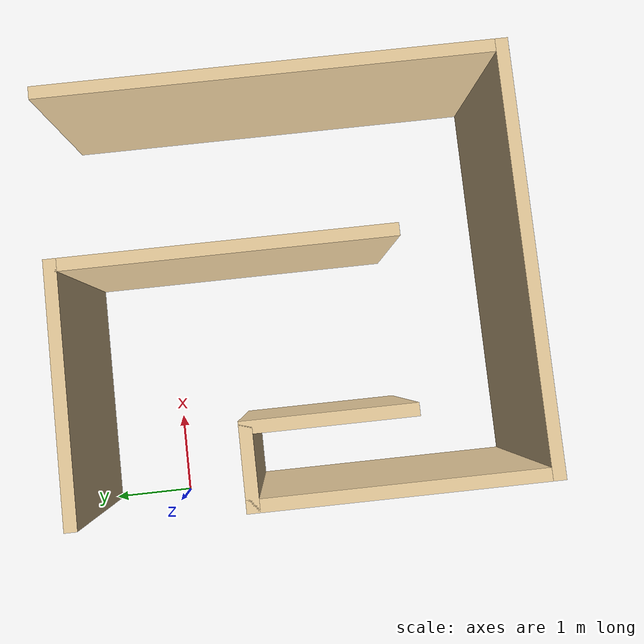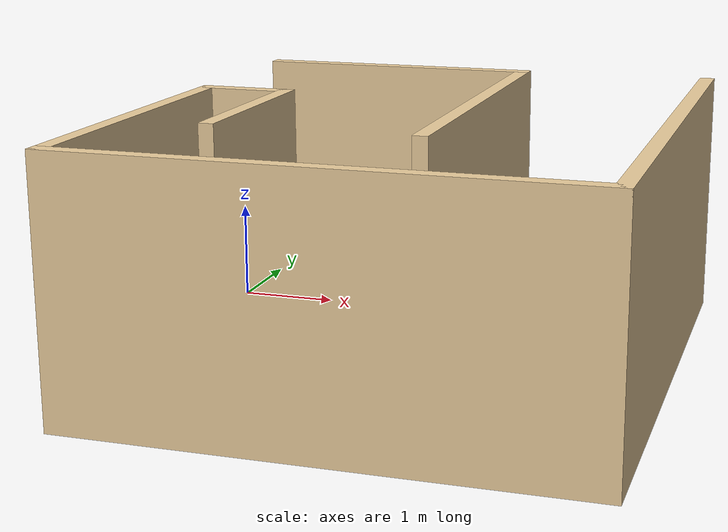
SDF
<?xml version='1.0'?>
<sdf version='1.7'>
  <model name='test_01'>
    <pose>2.475 -1.65039 0 0 -0 0</pose>
    <link name='Wall_0'>
      <collision name='Wall_0_Collision'>
        <geometry>
          <box>
            <size>1 0.15 2.5</size>
          </box>
        </geometry>
        <pose>0 0 1.25 0 -0 0</pose>
      </collision>
      <visual name='Wall_0_Visual'>
        <pose>0 0 1.25 0 -0 0</pose>
        <geometry>
          <box>
            <size>1 0.15 2.5</size>
          </box>
        </geometry>
        <material>
          <script>
            <uri>file://media/materials/scripts/gazebo.material</uri>
            <name>Gazebo/Grey</name>
          </script>
          <ambient>0.921569 0.807843 0.615686 1</ambient>
        </material>
        <meta>
          <layer>0</layer>
        </meta>
      </visual>
      <pose>-2 0.675 0 0 -0 0</pose>
    </link>
    <link name='Wall_10'>
      <collision name='Wall_10_Collision'>
        <geometry>
          <box>
            <size>3.5 0.15 2.5</size>
          </box>
        </geometry>
        <pose>0 0 1.25 0 -0 0</pose>
      </collision>
      <visual name='Wall_10_Visual'>
        <pose>0 0 1.25 0 -0 0</pose>
        <geometry>
          <box>
            <size>3.5 0.15 2.5</size>
          </box>
        </geometry>
        <material>
          <script>
            <uri>file://media/materials/scripts/gazebo.material</uri>
            <name>Gazebo/Grey</name>
          </script>
          <ambient>0.921569 0.807843 0.615686 1</ambient>
        </material>
        <meta>
          <layer>0</layer>
        </meta>
      </visual>
      <pose>-2.425 -1 0 0 -0 -1.5708</pose>
    </link>
    <link name='Wall_12'>
      <collision name='Wall_12_Collision'>
        <geometry>
          <box>
            <size>5 0.15 2.5</size>
          </box>
        </geometry>
        <pose>0 0 1.25 0 -0 0</pose>
      </collision>
      <visual name='Wall_12_Visual'>
        <pose>0 0 1.25 0 -0 0</pose>
        <geometry>
          <box>
            <size>5 0.15 2.5</size>
          </box>
        </geometry>
        <material>
          <script>
            <uri>file://media/materials/scripts/gazebo.material</uri>
            <name>Gazebo/Grey</name>
          </script>
          <ambient>0.921569 0.807843 0.615686 1</ambient>
        </material>
        <meta>
          <layer>0</layer>
        </meta>
      </visual>
      <pose>-0 -2.675 0 0 -0 0</pose>
    </link>
    <link name='Wall_14'>
      <collision name='Wall_14_Collision'>
        <geometry>
          <box>
            <size>5.5 0.15 2.5</size>
          </box>
        </geometry>
        <pose>0 0 1.25 0 -0 0</pose>
      </collision>
      <visual name='Wall_14_Visual'>
        <pose>0 0 1.25 0 -0 0</pose>
        <geometry>
          <box>
            <size>5.5 0.15 2.5</size>
          </box>
        </geometry>
        <material>
          <script>
            <uri>file://media/materials/scripts/gazebo.material</uri>
            <name>Gazebo/Grey</name>
          </script>
          <ambient>0.921569 0.807843 0.615686 1</ambient>
        </material>
        <meta>
          <layer>0</layer>
        </meta>
      </visual>
      <pose>2.425 0 0 0 -0 1.5708</pose>
    </link>
    <link name='Wall_4'>
      <collision name='Wall_4_Collision'>
        <geometry>
          <box>
            <size>3 0.15 2.5</size>
          </box>
        </geometry>
        <pose>0 0 1.25 0 -0 0</pose>
      </collision>
      <visual name='Wall_4_Visual'>
        <pose>0 0 1.25 0 -0 0</pose>
        <geometry>
          <box>
            <size>3 0.15 2.5</size>
          </box>
        </geometry>
        <material>
          <script>
            <uri>file://media/materials/scripts/gazebo.material</uri>
            <name>Gazebo/Grey</name>
          </script>
          <ambient>0.921569 0.807843 0.615686 1</ambient>
        </material>
        <meta>
          <layer>0</layer>
        </meta>
      </visual>
      <pose>-0.993235 2.66264 0 0 -0 0</pose>
    </link>
    <link name='Wall_6'>
      <collision name='Wall_6_Collision'>
        <geometry>
          <box>
            <size>4 0.15 2.5</size>
          </box>
        </geometry>
        <pose>0 0 1.25 0 -0 0</pose>
      </collision>
      <visual name='Wall_6_Visual'>
        <pose>0 0 1.25 0 -0 0</pose>
        <geometry>
          <box>
            <size>4 0.15 2.5</size>
          </box>
        </geometry>
        <material>
          <script>
            <uri>file://media/materials/scripts/gazebo.material</uri>
            <name>Gazebo/Grey</name>
          </script>
          <ambient>0.921569 0.807843 0.615686 1</ambient>
        </material>
        <meta>
          <layer>0</layer>
        </meta>
      </visual>
      <pose>0.431765 0.737645 0 0 -0 -1.5708</pose>
    </link>
    <link name='Wall_8'>
      <collision name='Wall_8_Collision'>
        <geometry>
          <box>
            <size>2 0.15 2.5</size>
          </box>
        </geometry>
        <pose>0 0 1.25 0 -0 0</pose>
      </collision>
      <visual name='Wall_8_Visual'>
        <pose>0 0 1.25 0 -0 0</pose>
        <geometry>
          <box>
            <size>2 0.15 2.5</size>
          </box>
        </geometry>
        <material>
          <script>
            <uri>file://media/materials/scripts/gazebo.material</uri>
            <name>Gazebo/Grey</name>
          </script>
          <ambient>0.921569 0.807843 0.615686 1</ambient>
        </material>
        <meta>
          <layer>0</layer>
        </meta>
      </visual>
      <pose>-1.575 -0.25 0 0 -0 -1.5708</pose>
    </link>
    <static>1</static>
  </model>
</sdf>
